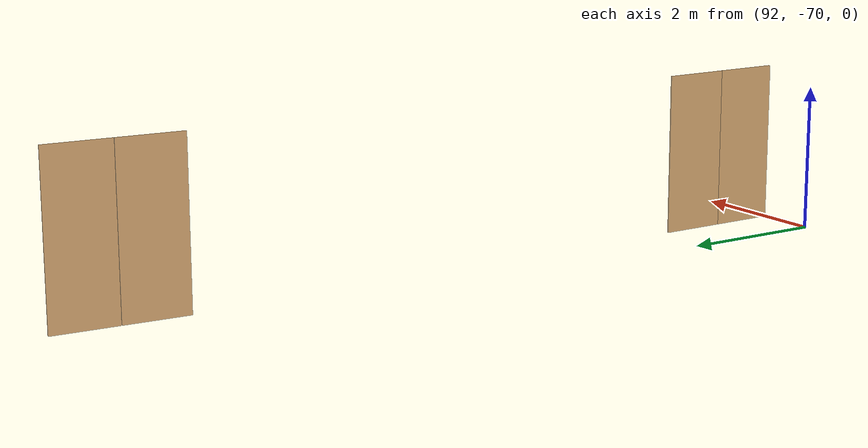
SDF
<sdf version="1.7">
 <world name="sim_world">
  <model name="puerta120">
   <pose>92.81364781911735 -69.07177327403764 0.0 0 0 1.580216972221288</pose>
   <link name="right">
    <pose>0.45666557138238584 0 1.11 0 0 0</pose>
    <visual name="right_visual">
     <geometry><box><size>0.9033311427647717 0.03 2.2</size></box></geometry>
     <material>
      <ambient>0.5 0.25 0 0.6</ambient>
      <diffuse>0.5 0.25 0 0.6</diffuse>
      <pbr><metal><metalness>0.0</metalness></metal></pbr>
     </material>
    </visual>
    <collision name="right_collision">
     <geometry><box><size>0.9033311427647717 0.03 2.2</size></box></geometry>
     <surface><contact><collide_bitmask>0x02</collide_bitmask></contact></surface>
    </collision>
    <inertial>
     <mass>50.0</mass>
     <inertia><ixx>20.17041666666667</ixx><iyy>23.56669647286962</iyy><izz>3.4037798062029516</izz></inertia>
    </inertial>
   </link>
   <joint name="right_joint" type="revolute">
    <parent>world</parent>
    <child>right</child>
    <axis><xyz>0 0 1</xyz><limit><lower>0</lower><upper>1.57</upper></limit></axis>
    <pose>0.45666557138238584 0 0 0 0 0</pose>
   </joint>
   <link name="left">
    <pose>-0.45666557138238584 0 1.11 0 0 0</pose>
    <visual name="left_visual">
     <geometry><box><size>0.9033311427647717 0.03 2.2</size></box></geometry>
     <material>
      <ambient>0.5 0.25 0 0.6</ambient>
      <diffuse>0.5 0.25 0 0.6</diffuse>
      <pbr><metal><metalness>0.0</metalness></metal></pbr>
     </material>
    </visual>
    <collision name="left_collision">
     <geometry><box><size>0.9033311427647717 0.03 2.2</size></box></geometry>
     <surface><contact><collide_bitmask>0x02</collide_bitmask></contact></surface>
    </collision>
    <inertial>
     <mass>50.0</mass>
     <inertia><ixx>20.17041666666667</ixx><iyy>23.56669647286962</iyy><izz>3.4037798062029516</izz></inertia>
    </inertial>
   </link>
   <joint name="left_joint" type="revolute">
    <parent>world</parent>
    <child>left</child>
    <axis><xyz>0 0 1</xyz><limit><lower>-1.57</lower><upper>0</upper></limit></axis>
    <pose>-0.45666557138238584 0 0 0 0 0</pose>
   </joint>
   <plugin name="register_component" filename="libregister_component.so">
    <component name="Door">
     <v_max_door>0.5</v_max_door>
     <a_max_door>0.3</a_max_door>
     <a_nom_door>0.15</a_nom_door>
     <dx_min_door>0.01</dx_min_door>
     <f_max_door>500.0</f_max_door>
     <ros_interface>true</ros_interface>
     <door name="puerta120" type="DoubleSwingDoor" left_joint_name="left_joint" right_joint_name="right_joint"/>
    </component>
   </plugin>
  </model>
  <model name="puerta124">
   <pose>92.78895064351497 -60.000231404541395 0.0 0 0 1.5101746127392333</pose>
   <link name="right">
    <pose>0.43629427210294625 0 1.11 0 0 0</pose>
    <visual name="right_visual">
     <geometry><box><size>0.8625885442058925 0.03 2.2</size></box></geometry>
     <material>
      <ambient>0.5 0.25 0 0.6</ambient>
      <diffuse>0.5 0.25 0 0.6</diffuse>
      <pbr><metal><metalness>0.0</metalness></metal></pbr>
     </material>
    </visual>
    <collision name="right_collision">
     <geometry><box><size>0.8625885442058925 0.03 2.2</size></box></geometry>
     <surface><contact><collide_bitmask>0x02</collide_bitmask></contact></surface>
    </collision>
    <inertial>
     <mass>50.0</mass>
     <inertia><ixx>20.17041666666667</ixx><iyy>23.26691248581351</iyy><izz>3.1039958191468373</izz></inertia>
    </inertial>
   </link>
   <joint name="right_joint" type="revolute">
    <parent>world</parent>
    <child>right</child>
    <axis><xyz>0 0 1</xyz><limit><lower>0</lower><upper>1.57</upper></limit></axis>
    <pose>0.43629427210294625 0 0 0 0 0</pose>
   </joint>
   <link name="left">
    <pose>-0.43629427210294625 0 1.11 0 0 0</pose>
    <visual name="left_visual">
     <geometry><box><size>0.8625885442058925 0.03 2.2</size></box></geometry>
     <material>
      <ambient>0.5 0.25 0 0.6</ambient>
      <diffuse>0.5 0.25 0 0.6</diffuse>
      <pbr><metal><metalness>0.0</metalness></metal></pbr>
     </material>
    </visual>
    <collision name="left_collision">
     <geometry><box><size>0.8625885442058925 0.03 2.2</size></box></geometry>
     <surface><contact><collide_bitmask>0x02</collide_bitmask></contact></surface>
    </collision>
    <inertial>
     <mass>50.0</mass>
     <inertia><ixx>20.17041666666667</ixx><iyy>23.26691248581351</iyy><izz>3.1039958191468373</izz></inertia>
    </inertial>
   </link>
   <joint name="left_joint" type="revolute">
    <parent>world</parent>
    <child>left</child>
    <axis><xyz>0 0 1</xyz><limit><lower>-1.57</lower><upper>0</upper></limit></axis>
    <pose>-0.43629427210294625 0 0 0 0 0</pose>
   </joint>
   <plugin name="register_component" filename="libregister_component.so">
    <component name="Door">
     <v_max_door>0.5</v_max_door>
     <a_max_door>0.3</a_max_door>
     <a_nom_door>0.15</a_nom_door>
     <dx_min_door>0.01</dx_min_door>
     <f_max_door>500.0</f_max_door>
     <ros_interface>true</ros_interface>
     <door name="puerta124" type="DoubleSwingDoor" left_joint_name="left_joint" right_joint_name="right_joint"/>
    </component>
   </plugin>
  </model>
 </world>
</sdf>
